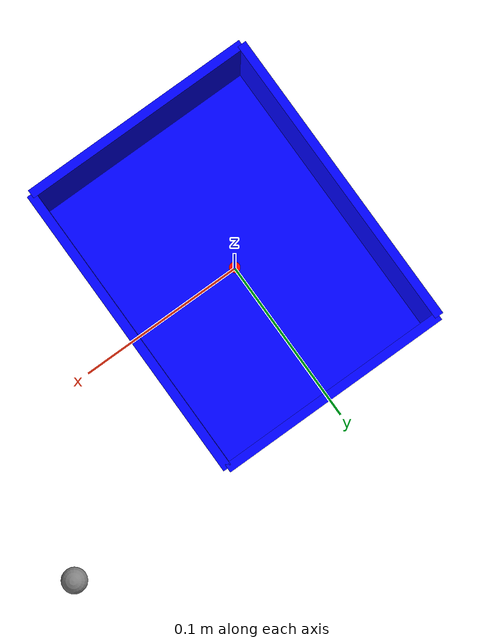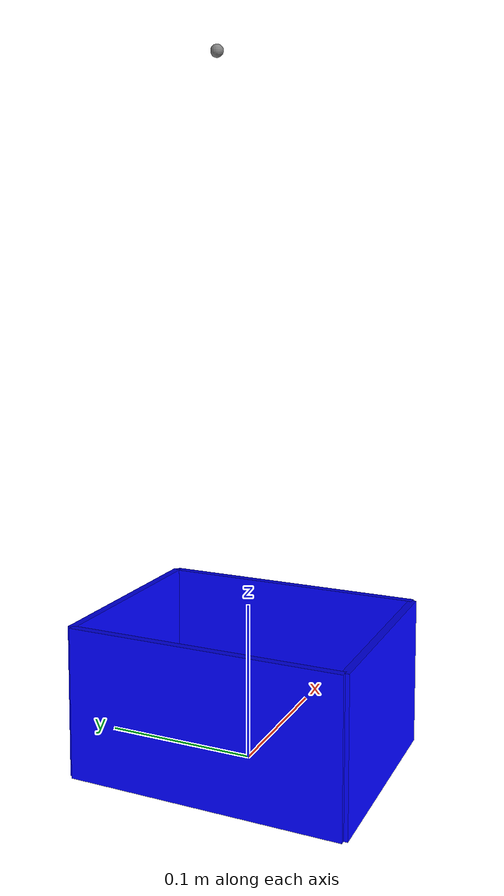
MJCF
<mujoco model="box_blue_large">
    <compiler angle="radian" meshdir="environment_parts/" />
    <asset>
        <!-- Add a blue material with plastic-like properties -->
        <material name="blue_plastic2" rgba="0 0 1 1" shininess="0.8" specular="1"/>
    </asset>
    <worldbody>
        <!-- Uncomment and adjust the light if needed -->
        <body name="Kiste" pos="0 0 0">
            <site name="gripping_point" pos="0.135 0.0875 0.475" quat="0 -1 0 0"/>
            <site name="grasp_pop" pos="0 0 0" size="0.01" rgba="1 0 0 1" group="0"/>
            <!-- Adjust the geometries to reflect the dimensions and apply the blue plastic material -->
            <geom pos="0 0 0.00475" size="0.0675 0.0875 0.00475" type="box" condim="3" name="Kiste_bottom" material="blue_plastic2"/>
            <geom pos="0.0675 0 0.0475" size="0.0025 0.0875 0.0475" type="box" condim="3" name="Kiste_wall1" material="blue_plastic2"/>
            <geom pos="-0.0675 0 0.0475" size="0.0025 0.0875 0.0475" type="box" condim="3" name="Kiste_wall2" material="blue_plastic2"/>
            <geom pos="0 0.0875 0.0475" size="0.0675 0.0025 0.0475" type="box" condim="3" name="Kiste_wall3" material="blue_plastic2"/>
            <geom pos="0 -0.0875 0.0475" size="0.0675 0.0025 0.0475" type="box" condim="3" name="Kiste_wall4" material="blue_plastic2"/>
        </body>
    </worldbody>
</mujoco>
